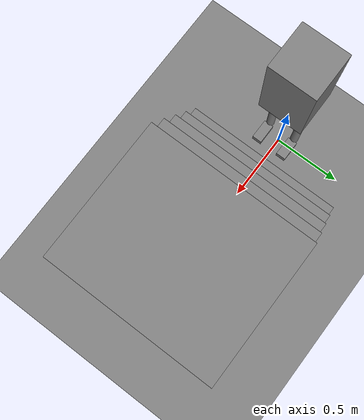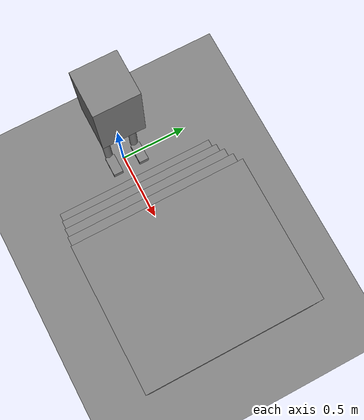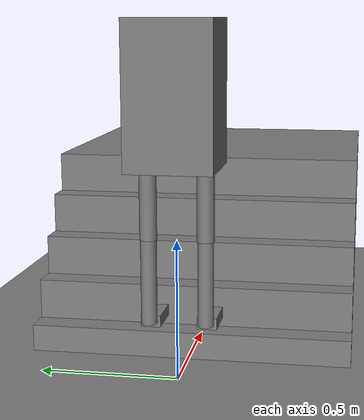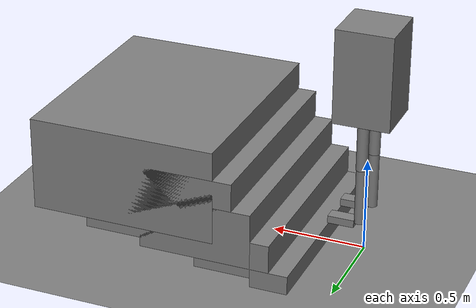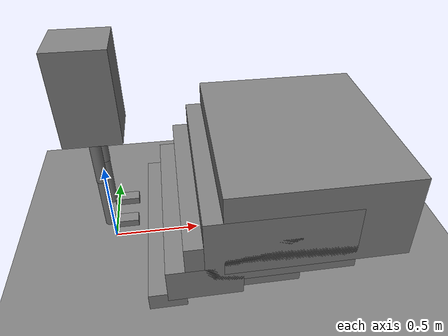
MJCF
<mujoco model="biped">
<compiler angle="radian" coordinate="local" inertiafromgeom="true"/>
<option gravity="0 0 -9.81" integrator="RK4" timestep="0.001"/>
<default>
<geom friction="10 3 1" condim="4" solref="0.002 1" solimp="0.9 0.95 0.001" contype="1" conaffinity="1"/>
<joint damping="2"/>
</default>
<worldbody>
<!--  Ground  -->
<geom name="ground" type="plane" size="8 8 0.1" pos="0 0 0"/>
<!--  SOLID stairs: rise=0.10, run=0.20  -->
<geom name="stair1" type="box" size="0.10 0.6 0.05" pos="0.30 0 0.05"/>
<geom name="stair2" type="box" size="0.20 0.6 0.10" pos="0.50 0 0.15"/>
<geom name="stair3" type="box" size="0.30 0.6 0.15" pos="0.70 0 0.25"/>
<geom name="stair4" type="box" size="0.40 0.6 0.20" pos="0.90 0 0.35"/>
<geom name="stair5" type="box" size="0.50 0.6 0.25" pos="1.10 0 0.45"/>
<!--  Torso  -->
<body name="torso" pos="0 0 1.0">
<geom name="torso_geom" type="box" size="0.15 0.15 0.25" mass="6"/>
<!--  Floating base  -->
<joint name="rootx" type="slide" axis="1 0 0" damping="10"/>
<joint name="rootz" type="slide" axis="0 0 1" damping="10"/>
<joint name="rootyaw" type="hinge" axis="0 0 1" range="0 0"/>
<joint name="theta" type="hinge" axis="0 -1 0" range="-0.4 0.4"/>
<!--  LEFT LEG  -->
<body pos="0 -0.1 -0.2">
<joint name="q1" type="hinge" axis="0 1 0" range="-1.2 0.6"/>
<!--  thigh visual only  -->
<geom name="left_thigh_geom" type="cylinder" fromto="0 0 0 0 0 -0.3" size="0.03" contype="0" conaffinity="0"/>
<body pos="0 0 -0.3">
<joint name="q2" type="hinge" axis="0 1 0" range="0 2.4"/>
<!--  shin visual only  -->
<geom name="left_shin_geom" type="cylinder" fromto="0 0 0 0 0 -0.3" size="0.028" contype="0" conaffinity="0"/>
<!--  FOOT (contact)  -->
<geom name="left_foot" type="box" size="0.07 0.035 0.02" pos="0.09 0 -0.30"/>
<site name="left_foot_site" pos="0.09 0 -0.30" size="0.01"/>
</body>
</body>
<!--  RIGHT LEG  -->
<body pos="0 0.1 -0.2">
<joint name="q3" type="hinge" axis="0 1 0" range="-1.2 0.6"/>
<!--  thigh visual only  -->
<geom name="right_thigh_geom" type="cylinder" fromto="0 0 0 0 0 -0.3" size="0.03" contype="0" conaffinity="0"/>
<body pos="0 0 -0.3">
<joint name="q4" type="hinge" axis="0 1 0" range="0 2.4"/>
<!--  shin visual only  -->
<geom name="right_shin_geom" type="cylinder" fromto="0 0 0 0 0 -0.3" size="0.028" contype="0" conaffinity="0"/>
<!--  FOOT (contact)  -->
<geom name="right_foot" type="box" size="0.07 0.035 0.02" pos="0.09 0 -0.30"/>
<site name="right_foot_site" pos="0.09 0 -0.30" size="0.01"/>
</body>
</body>
</body>
</worldbody>
<actuator>
<position joint="q1" kp="60" forcerange="-80 80"/>
<position joint="q3" kp="60" forcerange="-80 80"/>
<position joint="q2" kp="90" forcerange="-120 120"/>
<position joint="q4" kp="90" forcerange="-120 120"/>
</actuator>
<!--  KEYFRAME sets the true initial qpos   -->
<!--  qpos order: rootx rootz rootyaw theta q1 q2 q3 q4  -->
<keyframe>
<key name="start" qpos="0 1.42 0 0 0 1.05 0 1.05" qvel="0 0 0 0 0 0 0 0"/>
</keyframe>
</mujoco>
